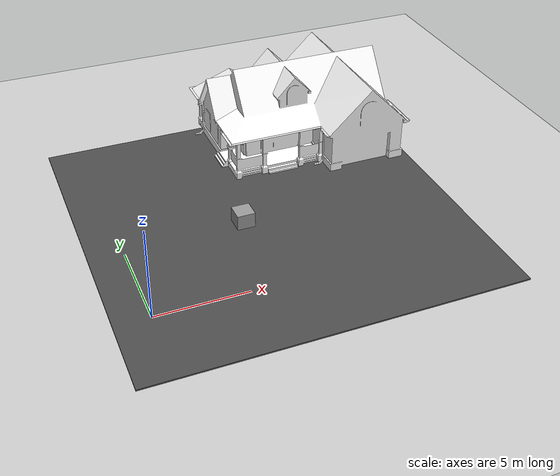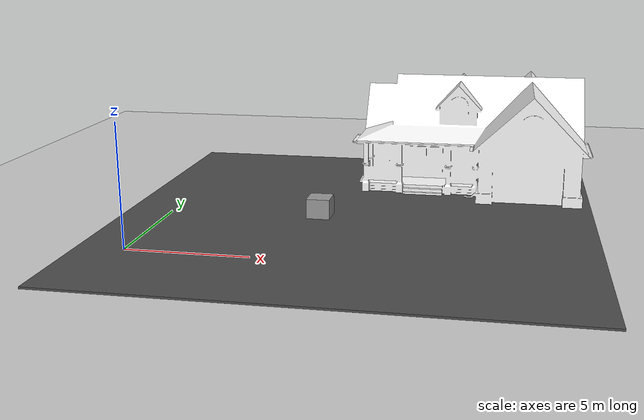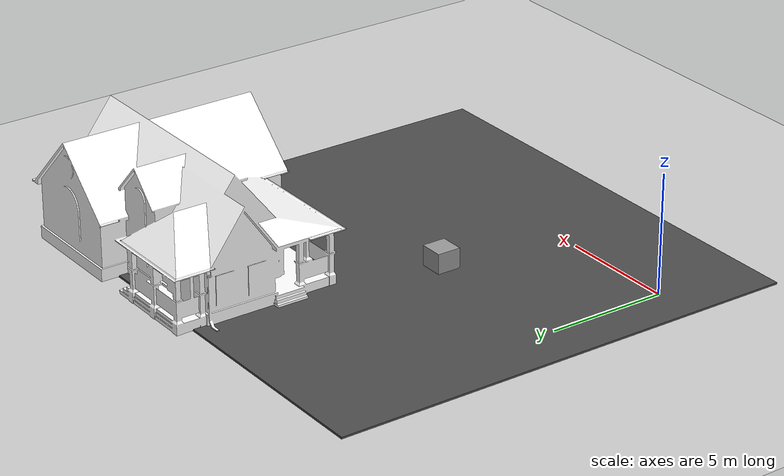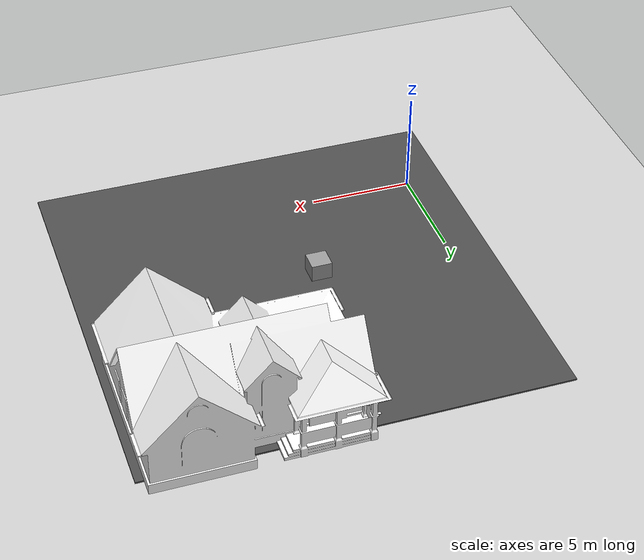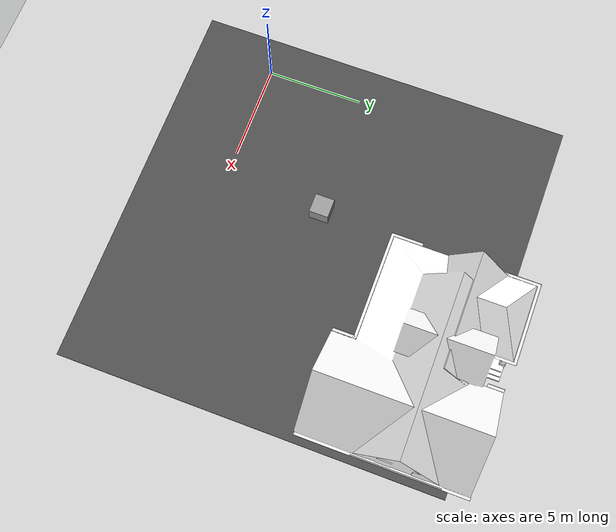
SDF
<sdf version="1.7">
 <world name="default">
  <light name="sun" type="directional">
   <pose>0 0 10 0 -0 0</pose>
   <diffuse>0.8 0.8 0.8 1</diffuse>
   <specular>0.2 0.2 0.2 1</specular>
   <attenuation>
    <range>1000</range>
    <constant>0.9</constant>
    <linear>0.01</linear>
    <quadratic>0.001</quadratic>
   </attenuation>
   <direction>-0.5 0.1 -0.9</direction>
   <spot><inner_angle>0</inner_angle><outer_angle>0</outer_angle><falloff>0</falloff></spot>
  </light>
  <model name="ground_plane">
   <static>1</static>
   <link name="link">
    <collision name="collision">
     <geometry><plane><normal>0 0 1</normal><size>100 100</size></plane></geometry>
     <surface>
      <contact><collide_bitmask>65535</collide_bitmask></contact>
      <friction><ode><mu>100</mu><mu2>50</mu2></ode></friction>
     </surface>
    </collision>
    <visual name="visual">
     <cast_shadows>0</cast_shadows>
     <geometry><plane><normal>0 0 1</normal><size>100 100</size></plane></geometry>
     <material>
      <script><uri>file://media/materials/scripts/gazebo.material</uri><name>Gazebo/Grey</name></script>
     </material>
    </visual>
   </link>
  </model>
  <gravity>0 0 -9.8</gravity>
  <magnetic_field>6e-06 2.3e-05 -4.2e-05</magnetic_field>
  <atmosphere type="adiabatic"/>
  <physics type="ode">
   <max_step_size>0.001</max_step_size>
   <real_time_factor>1</real_time_factor>
   <real_time_update_rate>1000</real_time_update_rate>
  </physics>
  <scene><ambient>0.4 0.4 0.4 1</ambient><background>0.7 0.7 0.7 1</background><shadows>1</shadows></scene>
  <spherical_coordinates>
   <surface_model>EARTH_WGS84</surface_model>
   <latitude_deg>0</latitude_deg>
   <longitude_deg>0</longitude_deg>
   <elevation>0</elevation>
   <heading_deg>0</heading_deg>
  </spherical_coordinates>
  <model name="unit_box">
   <pose>6.5596 5.32729 0.4 -0 -0 -0</pose>
   <link name="link">
    <inertial>
     <mass>0.1</mass>
     <inertia><ixx>0.0008</ixx><ixy>0</ixy><ixz>0</ixz><iyy>0.0008</iyy><iyz>0</iyz><izz>0.0015</izz></inertia>
    </inertial>
    <collision name="collision"><geometry><box><size>1 1 1</size></box></geometry></collision>
    <visual name="visual">
     <geometry><box><size>1 1 1</size></box></geometry>
     <material>
      <script><name>Gazebo/Grey</name><uri>file://media/materials/scripts/gazebo.material</uri></script>
     </material>
    </visual>
   </link>
  </model>
  <model name="asphalt_plane">
   <static>1</static>
   <link name="link">
    <collision name="collision"><geometry><box><size>20 20 0.1</size></box></geometry></collision>
    <visual name="visual">
     <cast_shadows>0</cast_shadows>
     <geometry><box><size>20 20 0.1</size></box></geometry>
     <material>
      <script>
       <uri>model://asphalt_plane/materials/scripts</uri>
       <uri>model://asphalt_plane/materials/textures</uri>
       <name>vrc/asphalt</name>
      </script>
     </material>
    </visual>
   </link>
   <pose>8.09891 5.76314 0 0 -0 0</pose>
  </model>
  <model name="House 1">
   <static>1</static>
   <link name="link">
    <collision name="collision">
     <geometry><mesh><uri>model://house_1/meshes/house_1.dae</uri><scale>1 1 1</scale></mesh></geometry>
    </collision>
    <visual name="visual">
     <geometry><mesh><uri>model://house_1/meshes/house_1.dae</uri><scale>1 1 1</scale></mesh></geometry>
     <material>
      <script>
       <uri>model://house_1/materials/scripts</uri>
       <uri>model://house_1/materials/textures</uri>
       <name>House_1/Diffuse</name>
      </script>
      <shader type="normal_map_tangent_space"><normal_map>House_1_Normal.png</normal_map></shader>
     </material>
    </visual>
   </link>
   <pose>12.8143 12.7135 0 0 -0 0</pose>
  </model>
 </world>
</sdf>
